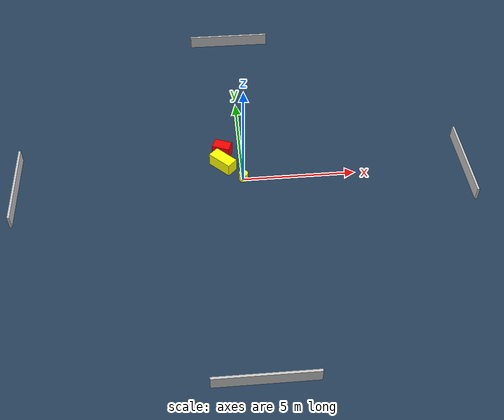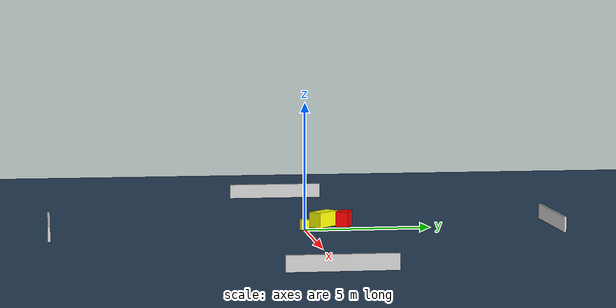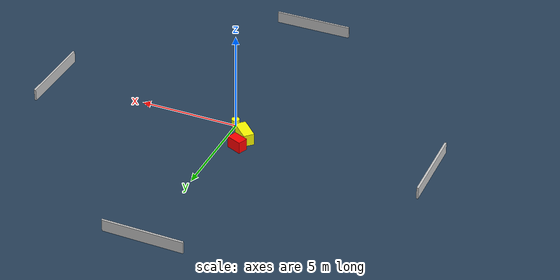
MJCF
<?xml version="1.0" ?>
<mujoco model="generated_environment">
  <option timestep="0.01" integrator="RK4" cone="elliptic"/>
  <default>
    <geom density="1"/>
  </default>
  <asset>
    <texture builtin="gradient" height="3072" name="skybox" rgb1="0.3 0.5 0.7" rgb2="0 0 0" type="skybox" width="512"/>
    <texture builtin="checker" height="300" name="groundplane" rgb1="0.2 0.3 0.4" rgb2="0.1 0.2 0.3" type="2d" width="300"/>
    <material name="groundplane" reflectance="0.2" texrepeat="5 5" texture="groundplane"/>
  </asset>
  <worldbody>
    <light dir="0 0 -1" directional="true" pos="0 0 1.5"/>
    <geom condim="3" friction="0.5 0.005 0.001" material="groundplane" name="floor" pos="0 0 0" size="0 0 0.05" type="plane"/>
    <body name="walls">
      <geom name="wall_1" condim="4" pos="-10.0 0.0 0.3" rgba="0.800000011920929 0.800000011920929 0.800000011920929 1.0" size="0.05 2.0 0.3" type="box"/>
      <geom name="wall_2" condim="4" pos="10.0 0.0 0.3" rgba="0.800000011920929 0.800000011920929 0.800000011920929 1.0" size="0.05 2.0 0.3" type="box"/>
      <geom name="wall_3" condim="4" pos="0.0 -10.0 0.3" rgba="0.800000011920929 0.800000011920929 0.800000011920929 1.0" size="2.0 0.05 0.3" type="box"/>
      <geom name="wall_4" condim="4" pos="0.0 10.0 0.3" rgba="0.800000011920929 0.800000011920929 0.800000011920929 1.0" size="2.0 0.05 0.3" type="box"/>
    </body>
    <body name="robot">
      <joint name="joint_x" type="slide" pos="0 0 0" axis="1 0 0"/>
      <joint name="joint_y" type="slide" pos="0 0 0" axis="0 1 0"/>
      <geom name="robot" type="cylinder" pos="0.0 0.0 0.2" size="0.2 0.2 0.0" mass="5.0" friction="1.0 0.005 0.0001" condim="4" rgba="1.0 1.0 0.0 1.0"/>
    </body>
    <body name="obstacle_1_movable">
      <geom name="obstacle_1_movable" condim="4" pos="-0.8613971830411398 0.8662856105293527 0.3" euler="0 0 135.07841800847282" friction="0.0 0.005 0.001" rgba="1.0 1.0 0.0 1.0" size="0.5785906422311302 0.27180848217797077 0.3" type="box" mass="0.1"/>
      <joint type="free"/>
    </body>
    <body name="obstacle_2_static">
      <geom name="obstacle_2_static" condim="4" pos="-0.8475154274467701 1.6923855585996719 0.3" euler="0 0 337.5365018351477" friction="0.0 0.005 0.001" rgba="1.0 0.0 0.0 1.0" size="0.392727662449099 0.2511843367436644 0.3" type="box"/>
    </body>
  </worldbody>
  <actuator>
    <motor name="actuator_x" joint="joint_x" gear="1" ctrlrange="-1 1"/>
    <motor name="actuator_y" joint="joint_y" gear="1" ctrlrange="-1 1"/>
  </actuator>
</mujoco>
